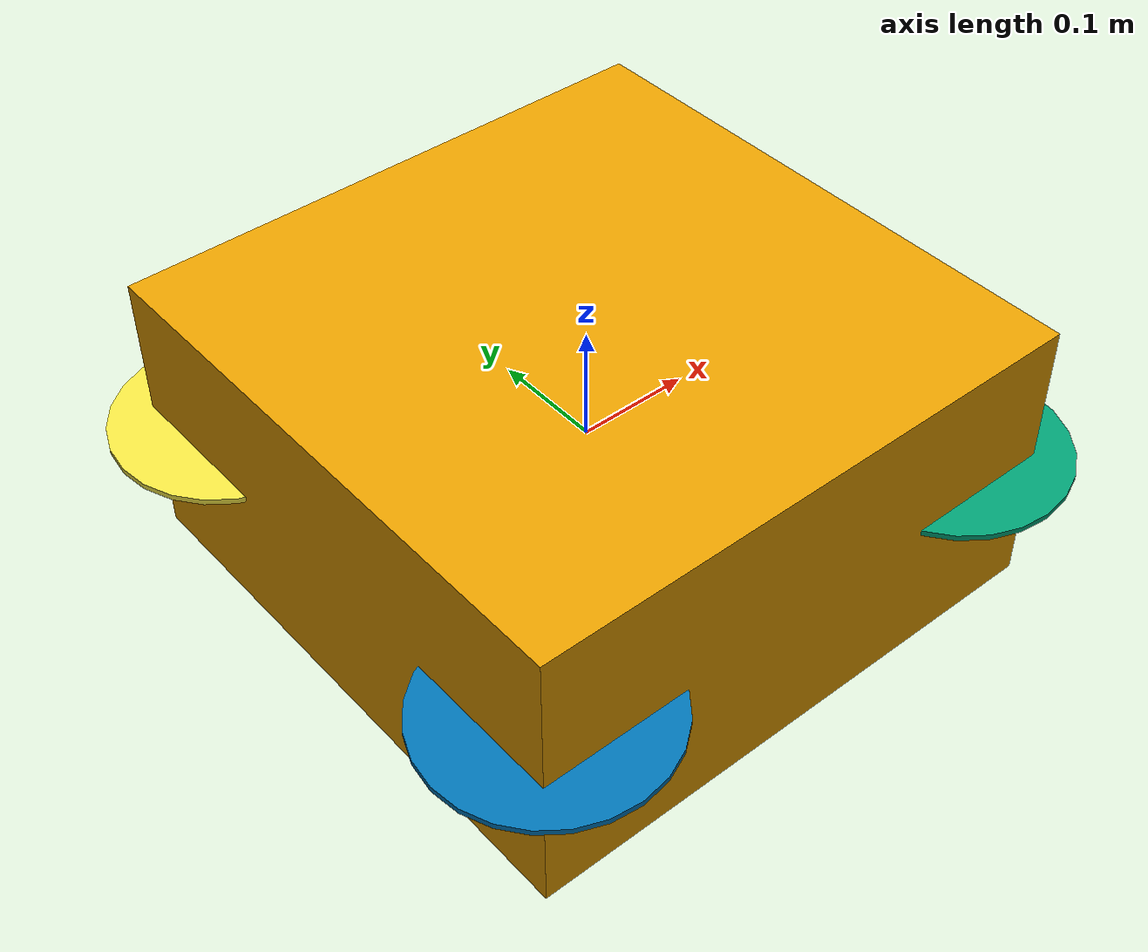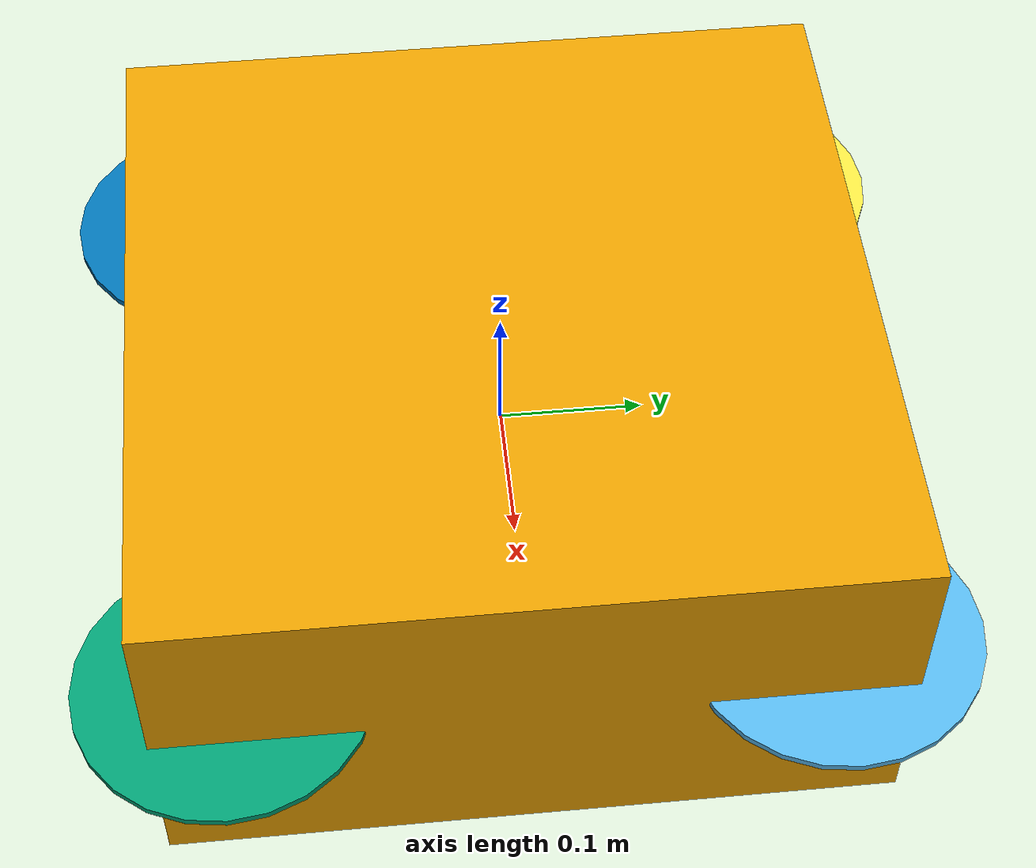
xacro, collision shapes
<?xml version='1.0'?>

<!--
Simulation overlay for the Vertex One. Includes hardware description from
vertex_one_description and Gazebo plugins for simulating sensors and drive. -->

<robot name="avular_vertex_one_sim" xmlns:xacro="http://ros.org/wiki/xacro" xmlns:gz="http://sdformat.org/schemas/root.xsd">

  <xacro:arg name="prefix" default=""/>
  <xacro:arg name="namespace" default="robot"/>

  <xacro:property name="prefix" value="$(arg prefix)"/>
  <xacro:property name="P" value="${prefix + ('_' if prefix else '')}"/>
  <xacro:property name="namespace" value="$(arg namespace)"/>

  <xacro:include filename="$(find vertex_one_description)/urdf/vertex_one.urdf.xacro"/>

  <xacro:macro name="rotor_props" params="suffix">
    <gazebo reference="${P}rotor_${suffix}">
      <gravity>1</gravity>
      <velocity_decay/>
    </gazebo>
  </xacro:macro>

  <xacro:macro name="rotor_joint_props" params="suffix">
    <gazebo reference="${P}rotor_${suffix}_joint"> </gazebo>
  </xacro:macro>

  <xacro:macro name="rotor_motor" params="suffix dir num">
    <plugin filename="ignition-gazebo-multicopter-motor-model-system"
      name="ignition::gazebo::systems::MulticopterMotorModel">
      <robotNamespace>${namespace}</robotNamespace>
      <jointName>${P}rotor_${suffix}_joint</jointName>
      <linkName>${P}rotor_${suffix}</linkName>
      <turningDirection>${dir}</turningDirection>
      <timeConstantUp>0.0125</timeConstantUp>
      <timeConstantDown>0.025</timeConstantDown>
      <maxRotVelocity>800.0</maxRotVelocity>
      <motorConstant>8.54858e-06</motorConstant>
      <momentConstant>0.016</momentConstant>
      <commandSubTopic>motor_speed</commandSubTopic>
      <motorNumber>${num}</motorNumber>
      <rotorDragCoefficient>8.06428e-05</rotorDragCoefficient>
      <rollingMomentCoefficient>1e-06</rollingMomentCoefficient>
      <motorSpeedPubTopic>motor_speed/${num}</motorSpeedPubTopic>
      <rotorVelocitySlowdownSim>10</rotorVelocitySlowdownSim>
      <motorType>velocity</motorType>
    </plugin>
  </xacro:macro>

  <xacro:macro name="rotor_config" params="suffix dir">
    <rotor>
      <jointName>${P}rotor_${suffix}_joint</jointName>
      <forceConstant>8.54858e-06</forceConstant>
      <momentConstant>0.016</momentConstant>
      <direction>${dir}</direction>
    </rotor>
  </xacro:macro>

  <xacro:rotor_props suffix="FL"/>
  <xacro:rotor_props suffix="FR"/>
  <xacro:rotor_props suffix="RL"/>
  <xacro:rotor_props suffix="RR"/>

  <xacro:rotor_joint_props suffix="FL"/>
  <xacro:rotor_joint_props suffix="FR"/>
  <xacro:rotor_joint_props suffix="RL"/>
  <xacro:rotor_joint_props suffix="RR"/>

  <gazebo reference="${P}imu_link">
    <sensor name="imu" type="imu">
      <ignition_frame_id>${P}imu_link</ignition_frame_id>
      <topic>/${namespace}/imu</topic>
      <update_rate>100</update_rate>
      <always_on>1</always_on>
      <imu>
        <angular_velocity>
          <x><noise type="gaussian"><mean>0.0</mean><stddev>0.0002</stddev></noise></x>
          <y><noise type="gaussian"><mean>0.0</mean><stddev>0.0002</stddev></noise></y>
          <z><noise type="gaussian"><mean>0.0</mean><stddev>0.0002</stddev></noise></z>
        </angular_velocity>
        <linear_acceleration>
          <x><noise type="gaussian"><mean>0.0</mean><stddev>0.017</stddev></noise></x>
          <y><noise type="gaussian"><mean>0.0</mean><stddev>0.017</stddev></noise></y>
          <z><noise type="gaussian"><mean>0.0</mean><stddev>0.017</stddev></noise></z>
        </linear_acceleration>
      </imu>
    </sensor>
  </gazebo>

  <!-- Magnetometer is co-located with the IMU. -->
  <gazebo reference="${P}imu_link">
    <sensor name="magnetometer" type="magnetometer">
      <ignition_frame_id>${P}imu_link</ignition_frame_id>
      <topic>/${namespace}/magnetometer</topic>
      <update_rate>100</update_rate>
      <always_on>1</always_on>
      <magnetometer>
        <x><noise type="gaussian"><mean>0</mean><stddev>0.1</stddev></noise></x>
        <y><noise type="gaussian"><mean>0</mean><stddev>0.1</stddev></noise></y>
        <z><noise type="gaussian"><mean>0</mean><stddev>0.1</stddev></noise></z>
      </magnetometer>
    </sensor>
  </gazebo>

  <gazebo reference="${P}gnss_link">
    <sensor name="navsat" type="navsat">
      <ignition_frame_id>${P}gnss_link</ignition_frame_id>
      <topic>/${namespace}/gnss</topic>
      <update_rate>10</update_rate>
      <always_on>1</always_on>
      <gps>
        <position_sensing>
          <horizontal>
            <noise type="gaussian">
              <mean>0.0</mean>
              <stddev>0.0001</stddev>
            </noise>
          </horizontal>
          <vertical>
            <noise type="gaussian">
              <mean>0.0</mean>
              <stddev>0.0001</stddev>
            </noise>
          </vertical>
        </position_sensing>
      </gps>
    </sensor>
  </gazebo>

  <gazebo>
    <plugin filename="ignition-gazebo-joint-state-publisher-system"
      name="ignition::gazebo::systems::JointStatePublisher">
      <topic>/${namespace}/joint_states</topic>
    </plugin>

    <xacro:rotor_motor suffix="FL" dir="ccw" num="0"/>
    <xacro:rotor_motor suffix="FR" dir="cw"  num="1"/>
    <xacro:rotor_motor suffix="RL" dir="cw"  num="2"/>
    <xacro:rotor_motor suffix="RR" dir="ccw" num="3"/>

    <plugin
      filename="ignition-gazebo-multicopter-control-system"
      name="ignition::gazebo::systems::MulticopterVelocityControl">
      <robotNamespace>${namespace}</robotNamespace>
      <commandSubTopic>cmd_vel</commandSubTopic>
      <enableSubTopic>enable</enableSubTopic>
      <comLinkName>${P}base_link</comLinkName>
      <velocityGain>2.7 2.7 2.7</velocityGain>
      <attitudeGain>2 3 0.15</attitudeGain>
      <angularRateGain>0.4 0.52 0.18</angularRateGain>
      <maximumLinearAcceleration>2 2 2</maximumLinearAcceleration>

      <rotorConfiguration>
        <xacro:rotor_config suffix="FL" dir="1"/>
        <xacro:rotor_config suffix="FR" dir="-1"/>
        <xacro:rotor_config suffix="RL" dir="-1"/>
        <xacro:rotor_config suffix="RR" dir="1"/>
      </rotorConfiguration>
    </plugin>

    <plugin
      filename="ignition-gazebo-odometry-publisher-system"
      name="ignition::gazebo::systems::OdometryPublisher">
      <odom_topic>/${namespace}/odom</odom_topic>
      <odom_covariance_topic>/${namespace}/odom_with_covariance</odom_covariance_topic>
      <tf_topic>/${namespace}/tf</tf_topic>
      <odom_frame>${P}odom</odom_frame>
      <robot_base_frame>${P}base_link</robot_base_frame>
      <dimensions>3</dimensions>
      <xyz_offset>0 0 0</xyz_offset>
      <rpy_offset>0 0 0</rpy_offset>
      <gaussian_noise>0.001</gaussian_noise>
      <odom_publish_frequency>30</odom_publish_frequency>
    </plugin>
  </gazebo>

</robot>

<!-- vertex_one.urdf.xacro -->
<!-- Description for the Avular Vertex One. -->
<robot name="avular_vertex_one" xmlns:xacro="http://ros.org/wiki/xacro">

  <!-- Per-robot link/joint prefix (empty = none). -->
  <xacro:arg name="prefix" default=""/>
  <xacro:property name="prefix" value="$(arg prefix)"/>
  <xacro:property name="P" value="${prefix + ('_' if prefix else '')}"/>

  <!-- Rotor link: identical inertial/collision for all four rotors; visual
       orientation and prop mesh vary per rotor. -->
  <xacro:macro name="rotor_link" params="name visual_rpy mesh">
    <link name="${P}${name}">
      <inertial>
        <mass value="0.005"/>
        <inertia ixx="9.75e-07" ixy="0.0" ixz="0.0" iyy="4.17041e-05" iyz="0.0" izz="4.26041e-05"/>
      </inertial>
      <collision name="${name}_collision">
        <origin xyz="0 0 0" rpy="0 0 0"/>
        <geometry>
          <cylinder length="0.005" radius="0.1"/>
        </geometry>
      </collision>
      <visual name="${name}_visual">
        <origin xyz="0 0 0" rpy="${visual_rpy}"/>
        <geometry>
          <mesh filename="package://vertex_one_description/urdf/meshes/${mesh}"
            scale="0.001 0.001 0.001" />
        </geometry>
      </visual>
    </link>
  </xacro:macro>

  <xacro:macro name="rotor_joint" params="name x y">
    <joint type="continuous" name="${P}${name}_joint">
      <origin xyz="${x} ${y} 0" rpy="0 0 0"/>
      <child link="${P}${name}"/>
      <parent link="${P}base_link"/>
      <axis xyz="0 0 1"/>
      <limit effort="1000" velocity="1000"/>
    </joint>
  </xacro:macro>

  <xacro:macro name="sensor_link" params="name">
    <link name="${P}${name}">
      <inertial>
        <mass value="0.001"/>
        <inertia ixx="0.001" ixy="0.0" ixz="0.0" iyy="0.001" iyz="0.0" izz="0.001"/>
      </inertial>
    </link>
  </xacro:macro>

  <xacro:macro name="fixed_joint" params="name xyz">
    <joint type="fixed" name="${P}${name}_joint">
      <origin xyz="${xyz}" rpy="0 0 0"/>
      <child link="${P}${name}"/>
      <parent link="${P}base_link"/>
    </joint>
  </xacro:macro>
  <link name='${P}base_link'>
    <inertial>
      <mass value="1.5"/>
      <inertia ixx="0.0347563" ixy="0.0" ixz="0.0" iyy="0.07" iyz="0.0" izz="0.0977"/>
    </inertial>
    <collision name='collision'>
      <origin xyz="0 0 0" rpy="0 0 0"/>
      <geometry>
        <box size="0.5 0.5 0.25"/>
      </geometry>
    </collision>
    <visual name='visual'>
      <origin xyz="0 0 0" rpy="-1.5707964 0 1.5707964"/>
      <geometry>
        <mesh filename="package://vertex_one_description/urdf/meshes/body.dae"
          scale="0.001 0.001 0.001" />
      </geometry>
    </visual>
  </link>

  <xacro:rotor_link name="rotor_FL" visual_rpy="-1.5707964 0 0"         mesh="prop_l.dae"/>
  <xacro:rotor_link name="rotor_FR" visual_rpy="-1.5707964 0 3.1415926" mesh="prop_r.dae"/>
  <xacro:rotor_link name="rotor_RL" visual_rpy="-1.5707964 0 1.570796"  mesh="prop_l.dae"/>
  <xacro:rotor_link name="rotor_RR" visual_rpy="-1.5707964 0 3.1415926" mesh="prop_l.dae"/>

  <xacro:sensor_link name="imu_link"/>
  <xacro:sensor_link name="gnss_link"/>

  <!-- Symmetric X-quad layout -->
  <xacro:rotor_joint name="rotor_FL" x="0.20613"  y="0.20047"/>
  <xacro:rotor_joint name="rotor_FR" x="0.20613"  y="-0.20047"/>
  <xacro:rotor_joint name="rotor_RL" x="-0.20613" y="0.20047"/>
  <xacro:rotor_joint name="rotor_RR" x="-0.20613" y="-0.20047"/>

  <xacro:fixed_joint name="imu_link"  xyz="0 0 0"/>
  <xacro:fixed_joint name="gnss_link" xyz="-0.17 0.22 0"/>

</robot>
